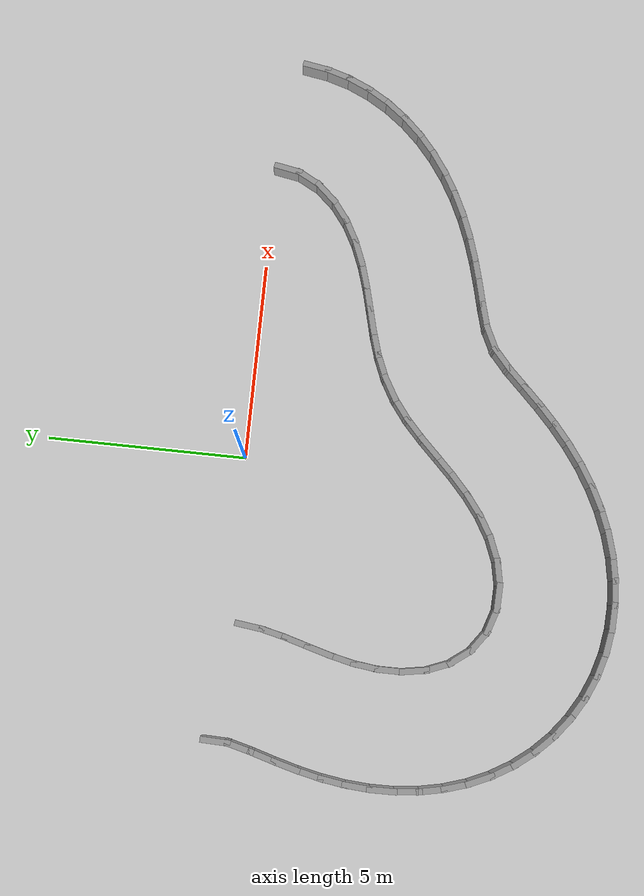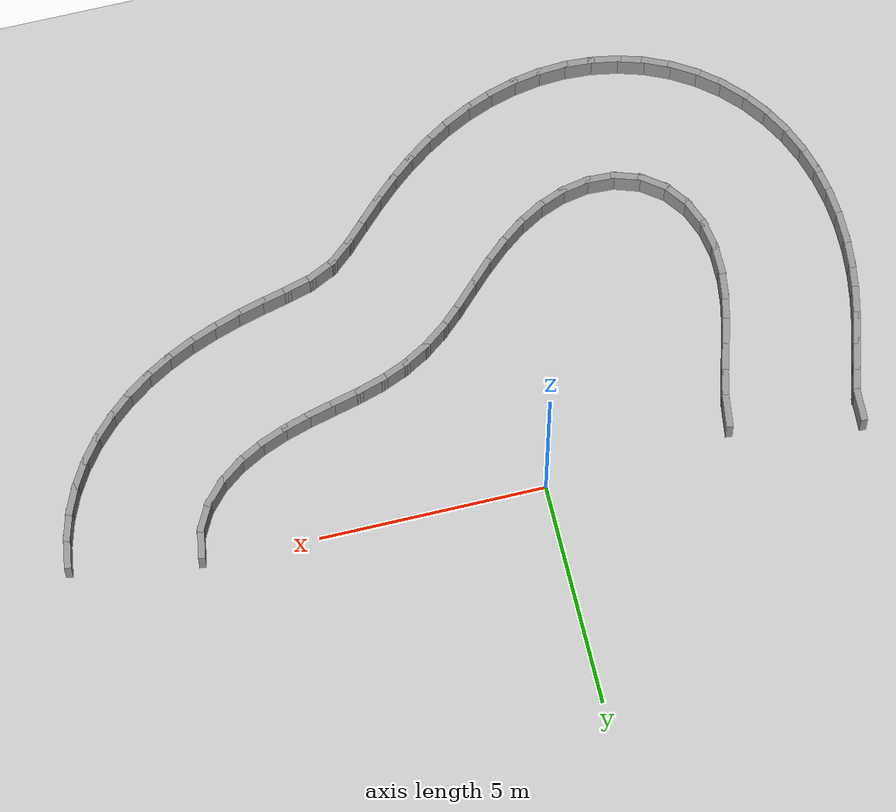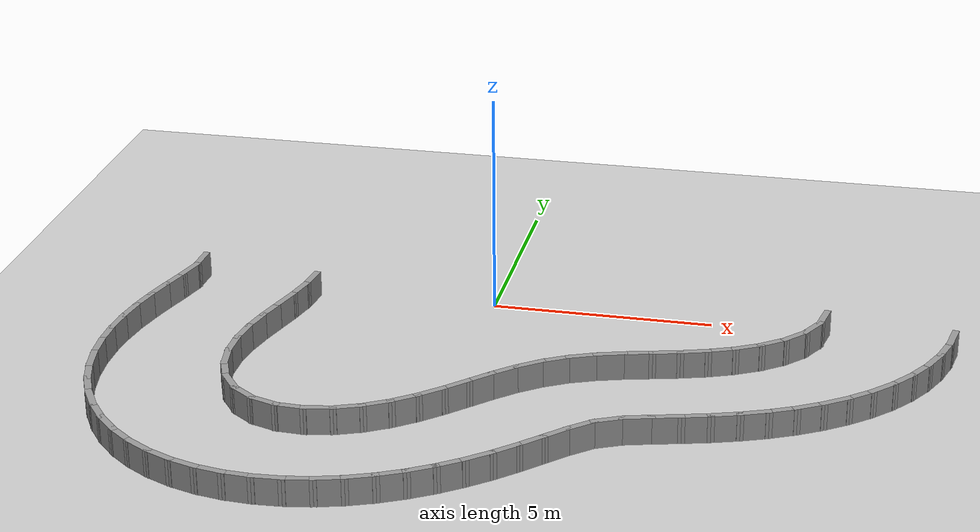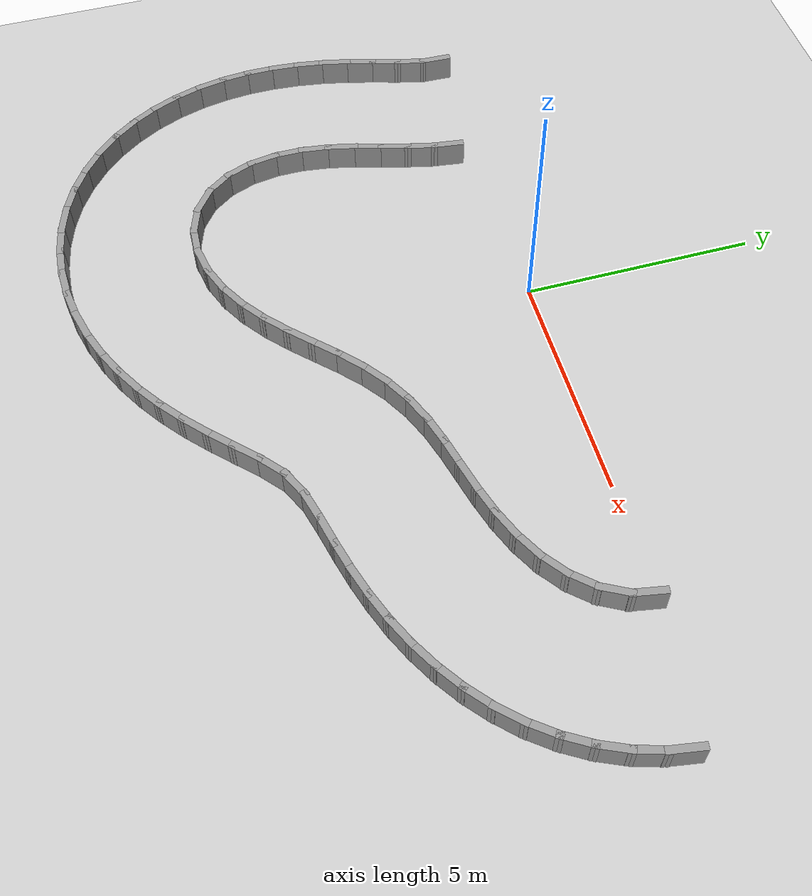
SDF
<sdf version="1.7">
 <world name="default">
  <model name="ground_plane">
   <static>1</static>
   <link name="link">
    <collision name="collision">
     <geometry><plane><normal>0 0 1</normal><size>100 100</size></plane></geometry>
     <surface><friction><ode><mu>100</mu><mu2>50</mu2></ode></friction></surface>
    </collision>
    <visual name="visual">
     <cast_shadows>0</cast_shadows>
     <geometry><plane><normal>0 0 1</normal><size>100 100</size></plane></geometry>
     <material>
      <script><uri>file://media/materials/scripts/gazebo.material</uri><name>Gazebo/Grey</name></script>
     </material>
    </visual>
   </link>
  </model>
  <model name="rand_lobed_09">
   <link name="Wall_35">
    <collision name="Wall_35_Collision">
     <geometry><box><size>0.7496 0.1500 0.6000</size></box></geometry>
     <pose>0 0 0.3000 0 -0 0</pose>
    </collision>
    <visual name="Wall_35_Visual">
     <pose>0 0 0.3000 0 -0 0</pose>
     <geometry><box><size>0.7496 0.1500 0.6000</size></box></geometry>
     <material>
      <script><uri>file://media/materials/scripts/gazebo.material</uri><name>Gazebo/Grey</name></script>
      <ambient>1 1 1 1</ambient>
     </material>
    </visual>
    <pose>-4.1681 -0.5869 0 0 -0 -1.69973</pose>
   </link>
   <link name="Wall_36">
    <collision name="Wall_36_Collision">
     <geometry><box><size>0.7498 0.1500 0.6000</size></box></geometry>
     <pose>0 0 0.3000 0 -0 0</pose>
    </collision>
    <visual name="Wall_36_Visual">
     <pose>0 0 0.3000 0 -0 0</pose>
     <geometry><box><size>0.7498 0.1500 0.6000</size></box></geometry>
     <material>
      <script><uri>file://media/materials/scripts/gazebo.material</uri><name>Gazebo/Grey</name></script>
      <ambient>1 1 1 1</ambient>
     </material>
    </visual>
    <pose>-4.2751 -1.1762 0 0 -0 -1.80134</pose>
   </link>
   <link name="Wall_37">
    <collision name="Wall_37_Collision">
     <geometry><box><size>0.7500 0.1500 0.6000</size></box></geometry>
     <pose>0 0 0.3000 0 -0 0</pose>
    </collision>
    <visual name="Wall_37_Visual">
     <pose>0 0 0.3000 0 -0 0</pose>
     <geometry><box><size>0.7500 0.1500 0.6000</size></box></geometry>
     <material>
      <script><uri>file://media/materials/scripts/gazebo.material</uri><name>Gazebo/Grey</name></script>
      <ambient>1 1 1 1</ambient>
     </material>
    </visual>
    <pose>-4.4270 -1.7564 0 0 -0 -1.85222</pose>
   </link>
   <link name="Wall_38">
    <collision name="Wall_38_Collision">
     <geometry><box><size>0.7500 0.1500 0.6000</size></box></geometry>
     <pose>0 0 0.3000 0 -0 0</pose>
    </collision>
    <visual name="Wall_38_Visual">
     <pose>0 0 0.3000 0 -0 0</pose>
     <geometry><box><size>0.7500 0.1500 0.6000</size></box></geometry>
     <material>
      <script><uri>file://media/materials/scripts/gazebo.material</uri><name>Gazebo/Grey</name></script>
      <ambient>1 1 1 1</ambient>
     </material>
    </visual>
    <pose>-4.5922 -2.3332 0 0 -0 -1.84720</pose>
   </link>
   <link name="Wall_39">
    <collision name="Wall_39_Collision">
     <geometry><box><size>0.7499 0.1500 0.6000</size></box></geometry>
     <pose>0 0 0.3000 0 -0 0</pose>
    </collision>
    <visual name="Wall_39_Visual">
     <pose>0 0 0.3000 0 -0 0</pose>
     <geometry><box><size>0.7499 0.1500 0.6000</size></box></geometry>
     <material>
      <script><uri>file://media/materials/scripts/gazebo.material</uri><name>Gazebo/Grey</name></script>
      <ambient>1 1 1 1</ambient>
     </material>
    </visual>
    <pose>-4.7403 -2.9143 0 0 -0 -1.79349</pose>
   </link>
   <link name="Wall_40">
    <collision name="Wall_40_Collision">
     <geometry><box><size>0.7497 0.1500 0.6000</size></box></geometry>
     <pose>0 0 0.3000 0 -0 0</pose>
    </collision>
    <visual name="Wall_40_Visual">
     <pose>0 0 0.3000 0 -0 0</pose>
     <geometry><box><size>0.7497 0.1500 0.6000</size></box></geometry>
     <material>
      <script><uri>file://media/materials/scripts/gazebo.material</uri><name>Gazebo/Grey</name></script>
      <ambient>1 1 1 1</ambient>
     </material>
    </visual>
    <pose>-4.8451 -3.5042 0 0 -0 -1.69987</pose>
   </link>
   <link name="Wall_41">
    <collision name="Wall_41_Collision">
     <geometry><box><size>0.7495 0.1500 0.6000</size></box></geometry>
     <pose>0 0 0.3000 0 -0 0</pose>
    </collision>
    <visual name="Wall_41_Visual">
     <pose>0 0 0.3000 0 -0 0</pose>
     <geometry><box><size>0.7495 0.1500 0.6000</size></box></geometry>
     <material>
      <script><uri>file://media/materials/scripts/gazebo.material</uri><name>Gazebo/Grey</name></script>
      <ambient>1 1 1 1</ambient>
     </material>
    </visual>
    <pose>-4.8837 -4.1013 0 0 -0 -1.57063</pose>
   </link>
   <link name="Wall_42">
    <collision name="Wall_42_Collision">
     <geometry><box><size>0.7491 0.1500 0.6000</size></box></geometry>
     <pose>0 0 0.3000 0 -0 0</pose>
    </collision>
    <visual name="Wall_42_Visual">
     <pose>0 0 0.3000 0 -0 0</pose>
     <geometry><box><size>0.7491 0.1500 0.6000</size></box></geometry>
     <material>
      <script><uri>file://media/materials/scripts/gazebo.material</uri><name>Gazebo/Grey</name></script>
      <ambient>1 1 1 1</ambient>
     </material>
    </visual>
    <pose>-4.8339 -4.6964 0 0 -0 -1.40405</pose>
   </link>
   <link name="Wall_43">
    <collision name="Wall_43_Collision">
     <geometry><box><size>0.7486 0.1500 0.6000</size></box></geometry>
     <pose>0 0 0.3000 0 -0 0</pose>
    </collision>
    <visual name="Wall_43_Visual">
     <pose>0 0 0.3000 0 -0 0</pose>
     <geometry><box><size>0.7486 0.1500 0.6000</size></box></geometry>
     <material>
      <script><uri>file://media/materials/scripts/gazebo.material</uri><name>Gazebo/Grey</name></script>
      <ambient>1 1 1 1</ambient>
     </material>
    </visual>
    <pose>-4.6740 -5.2701 0 0 -0 -1.19387</pose>
   </link>
   <link name="Wall_44">
    <collision name="Wall_44_Collision">
     <geometry><box><size>0.7480 0.1500 0.6000</size></box></geometry>
     <pose>0 0 0.3000 0 -0 0</pose>
    </collision>
    <visual name="Wall_44_Visual">
     <pose>0 0 0.3000 0 -0 0</pose>
     <geometry><box><size>0.7480 0.1500 0.6000</size></box></geometry>
     <material>
      <script><uri>file://media/materials/scripts/gazebo.material</uri><name>Gazebo/Grey</name></script>
      <ambient>1 1 1 1</ambient>
     </material>
    </visual>
    <pose>-4.3859 -5.7887 0 0 -0 -0.93351</pose>
   </link>
   <link name="Wall_45">
    <collision name="Wall_45_Collision">
     <geometry><box><size>0.7475 0.1500 0.6000</size></box></geometry>
     <pose>0 0 0.3000 0 -0 0</pose>
    </collision>
    <visual name="Wall_45_Visual">
     <pose>0 0 0.3000 0 -0 0</pose>
     <geometry><box><size>0.7475 0.1500 0.6000</size></box></geometry>
     <material>
      <script><uri>file://media/materials/scripts/gazebo.material</uri><name>Gazebo/Grey</name></script>
      <ambient>1 1 1 1</ambient>
     </material>
    </visual>
    <pose>-3.9667 -6.2051 0 0 -0 -0.63054</pose>
   </link>
   <link name="Wall_46">
    <collision name="Wall_46_Collision">
     <geometry><box><size>0.7478 0.1500 0.6000</size></box></geometry>
     <pose>0 0 0.3000 0 -0 0</pose>
    </collision>
    <visual name="Wall_46_Visual">
     <pose>0 0 0.3000 0 -0 0</pose>
     <geometry><box><size>0.7478 0.1500 0.6000</size></box></geometry>
     <material>
      <script><uri>file://media/materials/scripts/gazebo.material</uri><name>Gazebo/Grey</name></script>
      <ambient>1 1 1 1</ambient>
     </material>
    </visual>
    <pose>-3.4417 -6.4754 0 0 -0 -0.32027</pose>
   </link>
   <link name="Wall_47">
    <collision name="Wall_47_Collision">
     <geometry><box><size>0.7484 0.1500 0.6000</size></box></geometry>
     <pose>0 0 0.3000 0 -0 0</pose>
    </collision>
    <visual name="Wall_47_Visual">
     <pose>0 0 0.3000 0 -0 0</pose>
     <geometry><box><size>0.7484 0.1500 0.6000</size></box></geometry>
     <material>
      <script><uri>file://media/materials/scripts/gazebo.material</uri><name>Gazebo/Grey</name></script>
      <ambient>1 1 1 1</ambient>
     </material>
    </visual>
    <pose>-2.8591 -6.5824 0 0 -0 -0.04329</pose>
   </link>
   <link name="Wall_48">
    <collision name="Wall_48_Collision">
     <geometry><box><size>0.7489 0.1500 0.6000</size></box></geometry>
     <pose>0 0 0.3000 0 -0 0</pose>
    </collision>
    <visual name="Wall_48_Visual">
     <pose>0 0 0.3000 0 -0 0</pose>
     <geometry><box><size>0.7489 0.1500 0.6000</size></box></geometry>
     <material>
      <script><uri>file://media/materials/scripts/gazebo.material</uri><name>Gazebo/Grey</name></script>
      <ambient>1 1 1 1</ambient>
     </material>
    </visual>
    <pose>-2.2659 -6.5401 0 0 -0 0.18554</pose>
   </link>
   <link name="Wall_49">
    <collision name="Wall_49_Collision">
     <geometry><box><size>0.7493 0.1500 0.6000</size></box></geometry>
     <pose>0 0 0.3000 0 -0 0</pose>
    </collision>
    <visual name="Wall_49_Visual">
     <pose>0 0 0.3000 0 -0 0</pose>
     <geometry><box><size>0.7493 0.1500 0.6000</size></box></geometry>
     <material>
      <script><uri>file://media/materials/scripts/gazebo.material</uri><name>Gazebo/Grey</name></script>
      <ambient>1 1 1 1</ambient>
     </material>
    </visual>
    <pose>-1.6923 -6.3761 0 0 -0 0.37130</pose>
   </link>
   <link name="Wall_50">
    <collision name="Wall_50_Collision">
     <geometry><box><size>0.7495 0.1500 0.6000</size></box></geometry>
     <pose>0 0 0.3000 0 -0 0</pose>
    </collision>
    <visual name="Wall_50_Visual">
     <pose>0 0 0.3000 0 -0 0</pose>
     <geometry><box><size>0.7495 0.1500 0.6000</size></box></geometry>
     <material>
      <script><uri>file://media/materials/scripts/gazebo.material</uri><name>Gazebo/Grey</name></script>
      <ambient>1 1 1 1</ambient>
     </material>
    </visual>
    <pose>-1.1532 -6.1181 0 0 -0 0.52147</pose>
   </link>
   <link name="Wall_51">
    <collision name="Wall_51_Collision">
     <geometry><box><size>0.7497 0.1500 0.6000</size></box></geometry>
     <pose>0 0 0.3000 0 -0 0</pose>
    </collision>
    <visual name="Wall_51_Visual">
     <pose>0 0 0.3000 0 -0 0</pose>
     <geometry><box><size>0.7497 0.1500 0.6000</size></box></geometry>
     <material>
      <script><uri>file://media/materials/scripts/gazebo.material</uri><name>Gazebo/Grey</name></script>
      <ambient>1 1 1 1</ambient>
     </material>
    </visual>
    <pose>-0.6529 -5.7895 0 0 -0 0.64077</pose>
   </link>
   <link name="Wall_52">
    <collision name="Wall_52_Collision">
     <geometry><box><size>0.7499 0.1500 0.6000</size></box></geometry>
     <pose>0 0 0.3000 0 -0 0</pose>
    </collision>
    <visual name="Wall_52_Visual">
     <pose>0 0 0.3000 0 -0 0</pose>
     <geometry><box><size>0.7499 0.1500 0.6000</size></box></geometry>
     <material>
      <script><uri>file://media/materials/scripts/gazebo.material</uri><name>Gazebo/Grey</name></script>
      <ambient>1 1 1 1</ambient>
     </material>
    </visual>
    <pose>-0.1888 -5.4104 0 0 -0 0.72901</pose>
   </link>
   <link name="Wall_53">
    <collision name="Wall_53_Collision">
     <geometry><box><size>0.7500 0.1500 0.6000</size></box></geometry>
     <pose>0 0 0.3000 0 -0 0</pose>
    </collision>
    <visual name="Wall_53_Visual">
     <pose>0 0 0.3000 0 -0 0</pose>
     <geometry><box><size>0.7500 0.1500 0.6000</size></box></geometry>
     <material>
      <script><uri>file://media/materials/scripts/gazebo.material</uri><name>Gazebo/Grey</name></script>
      <ambient>1 1 1 1</ambient>
     </material>
    </visual>
    <pose>0.2481 -4.9995 0 0 -0 0.78068</pose>
   </link>
   <link name="Wall_54">
    <collision name="Wall_54_Collision">
     <geometry><box><size>0.7500 0.1500 0.6000</size></box></geometry>
     <pose>0 0 0.3000 0 -0 0</pose>
    </collision>
    <visual name="Wall_54_Visual">
     <pose>0 0 0.3000 0 -0 0</pose>
     <geometry><box><size>0.7500 0.1500 0.6000</size></box></geometry>
     <material>
      <script><uri>file://media/materials/scripts/gazebo.material</uri><name>Gazebo/Grey</name></script>
      <ambient>1 1 1 1</ambient>
     </material>
    </visual>
    <pose>0.6731 -4.5761 0 0 -0 0.78625</pose>
   </link>
   <link name="Wall_55">
    <collision name="Wall_55_Collision">
     <geometry><box><size>0.7499 0.1500 0.6000</size></box></geometry>
     <pose>0 0 0.3000 0 -0 0</pose>
    </collision>
    <visual name="Wall_55_Visual">
     <pose>0 0 0.3000 0 -0 0</pose>
     <geometry><box><size>0.7499 0.1500 0.6000</size></box></geometry>
     <material>
      <script><uri>file://media/materials/scripts/gazebo.material</uri><name>Gazebo/Grey</name></script>
      <ambient>1 1 1 1</ambient>
     </material>
    </visual>
    <pose>1.1069 -4.1620 0 0 -0 0.73813</pose>
   </link>
   <link name="Wall_56">
    <collision name="Wall_56_Collision">
     <geometry><box><size>0.7497 0.1500 0.6000</size></box></geometry>
     <pose>0 0 0.3000 0 -0 0</pose>
    </collision>
    <visual name="Wall_56_Visual">
     <pose>0 0 0.3000 0 -0 0</pose>
     <geometry><box><size>0.7497 0.1500 0.6000</size></box></geometry>
     <material>
      <script><uri>file://media/materials/scripts/gazebo.material</uri><name>Gazebo/Grey</name></script>
      <ambient>1 1 1 1</ambient>
     </material>
    </visual>
    <pose>1.5691 -3.7809 0 0 -0 0.64086</pose>
   </link>
   <link name="Wall_57">
    <collision name="Wall_57_Collision">
     <geometry><box><size>0.7496 0.1500 0.6000</size></box></geometry>
     <pose>0 0 0.3000 0 -0 0</pose>
    </collision>
    <visual name="Wall_57_Visual">
     <pose>0 0 0.3000 0 -0 0</pose>
     <geometry><box><size>0.7496 0.1500 0.6000</size></box></geometry>
     <material>
      <script><uri>file://media/materials/scripts/gazebo.material</uri><name>Gazebo/Grey</name></script>
      <ambient>1 1 1 1</ambient>
     </material>
    </visual>
    <pose>2.0704 -3.4540 0 0 -0 0.51472</pose>
   </link>
   <link name="Wall_58">
    <collision name="Wall_58_Collision">
     <geometry><box><size>0.7497 0.1500 0.6000</size></box></geometry>
     <pose>0 0 0.3000 0 -0 0</pose>
    </collision>
    <visual name="Wall_58_Visual">
     <pose>0 0 0.3000 0 -0 0</pose>
     <geometry><box><size>0.7497 0.1500 0.6000</size></box></geometry>
     <material>
      <script><uri>file://media/materials/scripts/gazebo.material</uri><name>Gazebo/Grey</name></script>
      <ambient>1 1 1 1</ambient>
     </material>
    </visual>
    <pose>2.6088 -3.1927 0 0 -0 0.38891</pose>
   </link>
   <link name="Wall_59">
    <collision name="Wall_59_Collision">
     <geometry><box><size>0.7499 0.1500 0.6000</size></box></geometry>
     <pose>0 0 0.3000 0 -0 0</pose>
    </collision>
    <visual name="Wall_59_Visual">
     <pose>0 0 0.3000 0 -0 0</pose>
     <geometry><box><size>0.7499 0.1500 0.6000</size></box></geometry>
     <material>
      <script><uri>file://media/materials/scripts/gazebo.material</uri><name>Gazebo/Grey</name></script>
      <ambient>1 1 1 1</ambient>
     </material>
    </visual>
    <pose>3.1735 -2.9927 0 0 -0 0.29199</pose>
   </link>
   <link name="Wall_60">
    <collision name="Wall_60_Collision">
     <geometry><box><size>0.7500 0.1500 0.6000</size></box></geometry>
     <pose>0 0 0.3000 0 -0 0</pose>
    </collision>
    <visual name="Wall_60_Visual">
     <pose>0 0 0.3000 0 -0 0</pose>
     <geometry><box><size>0.7500 0.1500 0.6000</size></box></geometry>
     <material>
      <script><uri>file://media/materials/scripts/gazebo.material</uri><name>Gazebo/Grey</name></script>
      <ambient>1 1 1 1</ambient>
     </material>
    </visual>
    <pose>3.7519 -2.8341 0 0 -0 0.24324</pose>
   </link>
   <link name="Wall_61">
    <collision name="Wall_61_Collision">
     <geometry><box><size>0.7500 0.1500 0.6000</size></box></geometry>
     <pose>0 0 0.3000 0 -0 0</pose>
    </collision>
    <visual name="Wall_61_Visual">
     <pose>0 0 0.3000 0 -0 0</pose>
     <geometry><box><size>0.7500 0.1500 0.6000</size></box></geometry>
     <material>
      <script><uri>file://media/materials/scripts/gazebo.material</uri><name>Gazebo/Grey</name></script>
      <ambient>1 1 1 1</ambient>
     </material>
    </visual>
    <pose>4.3340 -2.6887 0 0 -0 0.24637</pose>
   </link>
   <link name="Wall_62">
    <collision name="Wall_62_Collision">
     <geometry><box><size>0.7499 0.1500 0.6000</size></box></geometry>
     <pose>0 0 0.3000 0 -0 0</pose>
    </collision>
    <visual name="Wall_62_Visual">
     <pose>0 0 0.3000 0 -0 0</pose>
     <geometry><box><size>0.7499 0.1500 0.6000</size></box></geometry>
     <material>
      <script><uri>file://media/materials/scripts/gazebo.material</uri><name>Gazebo/Grey</name></script>
      <ambient>1 1 1 1</ambient>
     </material>
    </visual>
    <pose>4.9120 -2.5286 0 0 -0 0.29402</pose>
   </link>
   <link name="Wall_63">
    <collision name="Wall_63_Collision">
     <geometry><box><size>0.7498 0.1500 0.6000</size></box></geometry>
     <pose>0 0 0.3000 0 -0 0</pose>
    </collision>
    <visual name="Wall_63_Visual">
     <pose>0 0 0.3000 0 -0 0</pose>
     <geometry><box><size>0.7498 0.1500 0.6000</size></box></geometry>
     <material>
      <script><uri>file://media/materials/scripts/gazebo.material</uri><name>Gazebo/Grey</name></script>
      <ambient>1 1 1 1</ambient>
     </material>
    </visual>
    <pose>5.4778 -2.3311 0 0 -0 0.37762</pose>
   </link>
   <link name="Wall_64">
    <collision name="Wall_64_Collision">
     <geometry><box><size>0.7496 0.1500 0.6000</size></box></geometry>
     <pose>0 0 0.3000 0 -0 0</pose>
    </collision>
    <visual name="Wall_64_Visual">
     <pose>0 0 0.3000 0 -0 0</pose>
     <geometry><box><size>0.7496 0.1500 0.6000</size></box></geometry>
     <material>
      <script><uri>file://media/materials/scripts/gazebo.material</uri><name>Gazebo/Grey</name></script>
      <ambient>1 1 1 1</ambient>
     </material>
    </visual>
    <pose>6.0206 -2.0787 0 0 -0 0.49312</pose>
   </link>
   <link name="Wall_65">
    <collision name="Wall_65_Collision">
     <geometry><box><size>0.7493 0.1500 0.6000</size></box></geometry>
     <pose>0 0 0.3000 0 -0 0</pose>
    </collision>
    <visual name="Wall_65_Visual">
     <pose>0 0 0.3000 0 -0 0</pose>
     <geometry><box><size>0.7493 0.1500 0.6000</size></box></geometry>
     <material>
      <script><uri>file://media/materials/scripts/gazebo.material</uri><name>Gazebo/Grey</name></script>
      <ambient>1 1 1 1</ambient>
     </material>
    </visual>
    <pose>6.5246 -1.7573 0 0 -0 0.64217</pose>
   </link>
   <link name="Wall_66">
    <collision name="Wall_66_Collision">
     <geometry><box><size>0.7488 0.1500 0.6000</size></box></geometry>
     <pose>0 0 0.3000 0 -0 0</pose>
    </collision>
    <visual name="Wall_66_Visual">
     <pose>0 0 0.3000 0 -0 0</pose>
     <geometry><box><size>0.7488 0.1500 0.6000</size></box></geometry>
     <material>
      <script><uri>file://media/materials/scripts/gazebo.material</uri><name>Gazebo/Grey</name></script>
      <ambient>1 1 1 1</ambient>
     </material>
    </visual>
    <pose>6.9660 -1.3563 0 0 -0 0.83293</pose>
   </link>
   <link name="Wall_67">
    <collision name="Wall_67_Collision">
     <geometry><box><size>0.7481 0.1500 0.6000</size></box></geometry>
     <pose>0 0 0.3000 0 -0 0</pose>
    </collision>
    <visual name="Wall_67_Visual">
     <pose>0 0 0.3000 0 -0 0</pose>
     <geometry><box><size>0.7481 0.1500 0.6000</size></box></geometry>
     <material>
      <script><uri>file://media/materials/scripts/gazebo.material</uri><name>Gazebo/Grey</name></script>
      <ambient>1 1 1 1</ambient>
     </material>
    </visual>
    <pose>7.3087 -0.8712 0 0 -0 1.07878</pose>
   </link>
   <link name="Wall_68">
    <collision name="Wall_68_Collision">
     <geometry><box><size>0.7472 0.1500 0.6000</size></box></geometry>
     <pose>0 0 0.3000 0 -0 0</pose>
    </collision>
    <visual name="Wall_68_Visual">
     <pose>0 0 0.3000 0 -0 0</pose>
     <geometry><box><size>0.7472 0.1500 0.6000</size></box></geometry>
     <material>
      <script><uri>file://media/materials/scripts/gazebo.material</uri><name>Gazebo/Grey</name></script>
      <ambient>1 1 1 1</ambient>
     </material>
    </visual>
    <pose>7.5043 -0.3140 0 0 -0 1.38770</pose>
   </link>
   <link name="Wall_118">
    <collision name="Wall_118_Collision">
     <geometry><box><size>0.7470 0.1500 0.6000</size></box></geometry>
     <pose>0 0 0.3000 0 -0 0</pose>
    </collision>
    <visual name="Wall_118_Visual">
     <pose>0 0 0.3000 0 -0 0</pose>
     <geometry><box><size>0.7470 0.1500 0.6000</size></box></geometry>
     <material>
      <script><uri>file://media/materials/scripts/gazebo.material</uri><name>Gazebo/Grey</name></script>
      <ambient>1 1 1 1</ambient>
     </material>
    </visual>
    <pose>-6.9895 -0.0608 0 0 -0 -1.60467</pose>
   </link>
   <link name="Wall_119">
    <collision name="Wall_119_Collision">
     <geometry><box><size>0.7498 0.1500 0.6000</size></box></geometry>
     <pose>0 0 0.3000 0 -0 0</pose>
    </collision>
    <visual name="Wall_119_Visual">
     <pose>0 0 0.3000 0 -0 0</pose>
     <geometry><box><size>0.7498 0.1500 0.6000</size></box></geometry>
     <material>
      <script><uri>file://media/materials/scripts/gazebo.material</uri><name>Gazebo/Grey</name></script>
      <ambient>1 1 1 1</ambient>
     </material>
    </visual>
    <pose>-7.0736 -0.6497 0 0 -0 -1.82010</pose>
   </link>
   <link name="Wall_120">
    <collision name="Wall_120_Collision">
     <geometry><box><size>0.7500 0.1500 0.6000</size></box></geometry>
     <pose>0 0 0.3000 0 -0 0</pose>
    </collision>
    <visual name="Wall_120_Visual">
     <pose>0 0 0.3000 0 -0 0</pose>
     <geometry><box><size>0.7500 0.1500 0.6000</size></box></geometry>
     <material>
      <script><uri>file://media/materials/scripts/gazebo.material</uri><name>Gazebo/Grey</name></script>
      <ambient>1 1 1 1</ambient>
     </material>
    </visual>
    <pose>-7.2322 -1.2282 0 0 -0 -1.85661</pose>
   </link>
   <link name="Wall_121">
    <collision name="Wall_121_Collision">
     <geometry><box><size>0.7500 0.1500 0.6000</size></box></geometry>
     <pose>0 0 0.3000 0 -0 0</pose>
    </collision>
    <visual name="Wall_121_Visual">
     <pose>0 0 0.3000 0 -0 0</pose>
     <geometry><box><size>0.7500 0.1500 0.6000</size></box></geometry>
     <material>
      <script><uri>file://media/materials/scripts/gazebo.material</uri><name>Gazebo/Grey</name></script>
      <ambient>1 1 1 1</ambient>
     </material>
    </visual>
    <pose>-7.3946 -1.8057 0 0 -0 -1.83340</pose>
   </link>
   <link name="Wall_122">
    <collision name="Wall_122_Collision">
     <geometry><box><size>0.7499 0.1500 0.6000</size></box></geometry>
     <pose>0 0 0.3000 0 -0 0</pose>
    </collision>
    <visual name="Wall_122_Visual">
     <pose>0 0 0.3000 0 -0 0</pose>
     <geometry><box><size>0.7499 0.1500 0.6000</size></box></geometry>
     <material>
      <script><uri>file://media/materials/scripts/gazebo.material</uri><name>Gazebo/Grey</name></script>
      <ambient>1 1 1 1</ambient>
     </material>
    </visual>
    <pose>-7.5360 -2.3885 0 0 -0 -1.78415</pose>
   </link>
   <link name="Wall_123">
    <collision name="Wall_123_Collision">
     <geometry><box><size>0.7499 0.1500 0.6000</size></box></geometry>
     <pose>0 0 0.3000 0 -0 0</pose>
    </collision>
    <visual name="Wall_123_Visual">
     <pose>0 0 0.3000 0 -0 0</pose>
     <geometry><box><size>0.7499 0.1500 0.6000</size></box></geometry>
     <material>
      <script><uri>file://media/materials/scripts/gazebo.material</uri><name>Gazebo/Grey</name></script>
      <ambient>1 1 1 1</ambient>
     </material>
    </visual>
    <pose>-7.6440 -2.9783 0 0 -0 -1.71971</pose>
   </link>
   <link name="Wall_124">
    <collision name="Wall_124_Collision">
     <geometry><box><size>0.7498 0.1500 0.6000</size></box></geometry>
     <pose>0 0 0.3000 0 -0 0</pose>
    </collision>
    <visual name="Wall_124_Visual">
     <pose>0 0 0.3000 0 -0 0</pose>
     <geometry><box><size>0.7498 0.1500 0.6000</size></box></geometry>
     <material>
      <script><uri>file://media/materials/scripts/gazebo.material</uri><name>Gazebo/Grey</name></script>
      <ambient>1 1 1 1</ambient>
     </material>
    </visual>
    <pose>-7.7106 -3.5740 0 0 -0 -1.64450</pose>
   </link>
   <link name="Wall_125">
    <collision name="Wall_125_Collision">
     <geometry><box><size>0.7498 0.1500 0.6000</size></box></geometry>
     <pose>0 0 0.3000 0 -0 0</pose>
    </collision>
    <visual name="Wall_125_Visual">
     <pose>0 0 0.3000 0 -0 0</pose>
     <geometry><box><size>0.7498 0.1500 0.6000</size></box></geometry>
     <material>
      <script><uri>file://media/materials/scripts/gazebo.material</uri><name>Gazebo/Grey</name></script>
      <ambient>1 1 1 1</ambient>
     </material>
    </visual>
    <pose>-7.7297 -4.1730 0 0 -0 -1.56086</pose>
   </link>
   <link name="Wall_126">
    <collision name="Wall_126_Collision">
     <geometry><box><size>0.7498 0.1500 0.6000</size></box></geometry>
     <pose>0 0 0.3000 0 -0 0</pose>
    </collision>
    <visual name="Wall_126_Visual">
     <pose>0 0 0.3000 0 -0 0</pose>
     <geometry><box><size>0.7498 0.1500 0.6000</size></box></geometry>
     <material>
      <script><uri>file://media/materials/scripts/gazebo.material</uri><name>Gazebo/Grey</name></script>
      <ambient>1 1 1 1</ambient>
     </material>
    </visual>
    <pose>-7.6965 -4.7713 0 0 -0 -1.46969</pose>
   </link>
   <link name="Wall_127">
    <collision name="Wall_127_Collision">
     <geometry><box><size>0.7497 0.1500 0.6000</size></box></geometry>
     <pose>0 0 0.3000 0 -0 0</pose>
    </collision>
    <visual name="Wall_127_Visual">
     <pose>0 0 0.3000 0 -0 0</pose>
     <geometry><box><size>0.7497 0.1500 0.6000</size></box></geometry>
     <material>
      <script><uri>file://media/materials/scripts/gazebo.material</uri><name>Gazebo/Grey</name></script>
      <ambient>1 1 1 1</ambient>
     </material>
    </visual>
    <pose>-7.6069 -5.3636 0 0 -0 -1.37177</pose>
   </link>
   <link name="Wall_128">
    <collision name="Wall_128_Collision">
     <geometry><box><size>0.7497 0.1500 0.6000</size></box></geometry>
     <pose>0 0 0.3000 0 -0 0</pose>
    </collision>
    <visual name="Wall_128_Visual">
     <pose>0 0 0.3000 0 -0 0</pose>
     <geometry><box><size>0.7497 0.1500 0.6000</size></box></geometry>
     <material>
      <script><uri>file://media/materials/scripts/gazebo.material</uri><name>Gazebo/Grey</name></script>
      <ambient>1 1 1 1</ambient>
     </material>
    </visual>
    <pose>-7.4580 -5.9437 0 0 -0 -1.26737</pose>
   </link>
   <link name="Wall_129">
    <collision name="Wall_129_Collision">
     <geometry><box><size>0.7497 0.1500 0.6000</size></box></geometry>
     <pose>0 0 0.3000 0 -0 0</pose>
    </collision>
    <visual name="Wall_129_Visual">
     <pose>0 0 0.3000 0 -0 0</pose>
     <geometry><box><size>0.7497 0.1500 0.6000</size></box></geometry>
     <material>
      <script><uri>file://media/materials/scripts/gazebo.material</uri><name>Gazebo/Grey</name></script>
      <ambient>1 1 1 1</ambient>
     </material>
    </visual>
    <pose>-7.2479 -6.5044 0 0 -0 -1.15716</pose>
   </link>
   <link name="Wall_130">
    <collision name="Wall_130_Collision">
     <geometry><box><size>0.7496 0.1500 0.6000</size></box></geometry>
     <pose>0 0 0.3000 0 -0 0</pose>
    </collision>
    <visual name="Wall_130_Visual">
     <pose>0 0 0.3000 0 -0 0</pose>
     <geometry><box><size>0.7496 0.1500 0.6000</size></box></geometry>
     <material>
      <script><uri>file://media/materials/scripts/gazebo.material</uri><name>Gazebo/Grey</name></script>
      <ambient>1 1 1 1</ambient>
     </material>
    </visual>
    <pose>-6.9760 -7.0378 0 0 -0 -1.04169</pose>
   </link>
   <link name="Wall_131">
    <collision name="Wall_131_Collision">
     <geometry><box><size>0.7496 0.1500 0.6000</size></box></geometry>
     <pose>0 0 0.3000 0 -0 0</pose>
    </collision>
    <visual name="Wall_131_Visual">
     <pose>0 0 0.3000 0 -0 0</pose>
     <geometry><box><size>0.7496 0.1500 0.6000</size></box></geometry>
     <material>
      <script><uri>file://media/materials/scripts/gazebo.material</uri><name>Gazebo/Grey</name></script>
      <ambient>1 1 1 1</ambient>
     </material>
    </visual>
    <pose>-6.6435 -7.5355 0 0 -0 -0.92190</pose>
   </link>
   <link name="Wall_132">
    <collision name="Wall_132_Collision">
     <geometry><box><size>0.7496 0.1500 0.6000</size></box></geometry>
     <pose>0 0 0.3000 0 -0 0</pose>
    </collision>
    <visual name="Wall_132_Visual">
     <pose>0 0 0.3000 0 -0 0</pose>
     <geometry><box><size>0.7496 0.1500 0.6000</size></box></geometry>
     <material>
      <script><uri>file://media/materials/scripts/gazebo.material</uri><name>Gazebo/Grey</name></script>
      <ambient>1 1 1 1</ambient>
     </material>
    </visual>
    <pose>-6.2532 -7.9891 0 0 -0 -0.79853</pose>
   </link>
   <link name="Wall_133">
    <collision name="Wall_133_Collision">
     <geometry><box><size>0.7496 0.1500 0.6000</size></box></geometry>
     <pose>0 0 0.3000 0 -0 0</pose>
    </collision>
    <visual name="Wall_133_Visual">
     <pose>0 0 0.3000 0 -0 0</pose>
     <geometry><box><size>0.7496 0.1500 0.6000</size></box></geometry>
     <material>
      <script><uri>file://media/materials/scripts/gazebo.material</uri><name>Gazebo/Grey</name></script>
      <ambient>1 1 1 1</ambient>
     </material>
    </visual>
    <pose>-5.8095 -8.3907 0 0 -0 -0.67285</pose>
   </link>
   <link name="Wall_134">
    <collision name="Wall_134_Collision">
     <geometry><box><size>0.7496 0.1500 0.6000</size></box></geometry>
     <pose>0 0 0.3000 0 -0 0</pose>
    </collision>
    <visual name="Wall_134_Visual">
     <pose>0 0 0.3000 0 -0 0</pose>
     <geometry><box><size>0.7496 0.1500 0.6000</size></box></geometry>
     <material>
      <script><uri>file://media/materials/scripts/gazebo.material</uri><name>Gazebo/Grey</name></script>
      <ambient>1 1 1 1</ambient>
     </material>
    </visual>
    <pose>-5.3189 -8.7333 0 0 -0 -0.54629</pose>
   </link>
   <link name="Wall_135">
    <collision name="Wall_135_Collision">
     <geometry><box><size>0.7496 0.1500 0.6000</size></box></geometry>
     <pose>0 0 0.3000 0 -0 0</pose>
    </collision>
    <visual name="Wall_135_Visual">
     <pose>0 0 0.3000 0 -0 0</pose>
     <geometry><box><size>0.7496 0.1500 0.6000</size></box></geometry>
     <material>
      <script><uri>file://media/materials/scripts/gazebo.material</uri><name>Gazebo/Grey</name></script>
      <ambient>1 1 1 1</ambient>
     </material>
    </visual>
    <pose>-4.7890 -9.0113 0 0 -0 -0.41997</pose>
   </link>
   <link name="Wall_136">
    <collision name="Wall_136_Collision">
     <geometry><box><size>0.7496 0.1500 0.6000</size></box></geometry>
     <pose>0 0 0.3000 0 -0 0</pose>
    </collision>
    <visual name="Wall_136_Visual">
     <pose>0 0 0.3000 0 -0 0</pose>
     <geometry><box><size>0.7496 0.1500 0.6000</size></box></geometry>
     <material>
      <script><uri>file://media/materials/scripts/gazebo.material</uri><name>Gazebo/Grey</name></script>
      <ambient>1 1 1 1</ambient>
     </material>
    </visual>
    <pose>-4.2284 -9.2209 0 0 -0 -0.29547</pose>
   </link>
   <link name="Wall_137">
    <collision name="Wall_137_Collision">
     <geometry><box><size>0.7496 0.1500 0.6000</size></box></geometry>
     <pose>0 0 0.3000 0 -0 0</pose>
    </collision>
    <visual name="Wall_137_Visual">
     <pose>0 0 0.3000 0 -0 0</pose>
     <geometry><box><size>0.7496 0.1500 0.6000</size></box></geometry>
     <material>
      <script><uri>file://media/materials/scripts/gazebo.material</uri><name>Gazebo/Grey</name></script>
      <ambient>1 1 1 1</ambient>
     </material>
    </visual>
    <pose>-3.6463 -9.3600 0 0 -0 -0.17368</pose>
   </link>
   <link name="Wall_138">
    <collision name="Wall_138_Collision">
     <geometry><box><size>0.7497 0.1500 0.6000</size></box></geometry>
     <pose>0 0 0.3000 0 -0 0</pose>
    </collision>
    <visual name="Wall_138_Visual">
     <pose>0 0 0.3000 0 -0 0</pose>
     <geometry><box><size>0.7497 0.1500 0.6000</size></box></geometry>
     <material>
      <script><uri>file://media/materials/scripts/gazebo.material</uri><name>Gazebo/Grey</name></script>
      <ambient>1 1 1 1</ambient>
     </material>
    </visual>
    <pose>-3.0516 -9.4286 0 0 -0 -0.05598</pose>
   </link>
   <link name="Wall_139">
    <collision name="Wall_139_Collision">
     <geometry><box><size>0.7497 0.1500 0.6000</size></box></geometry>
     <pose>0 0 0.3000 0 -0 0</pose>
    </collision>
    <visual name="Wall_139_Visual">
     <pose>0 0 0.3000 0 -0 0</pose>
     <geometry><box><size>0.7497 0.1500 0.6000</size></box></geometry>
     <material>
      <script><uri>file://media/materials/scripts/gazebo.material</uri><name>Gazebo/Grey</name></script>
      <ambient>1 1 1 1</ambient>
     </material>
    </visual>
    <pose>-2.4529 -9.4281 0 0 -0 0.05742</pose>
   </link>
   <link name="Wall_140">
    <collision name="Wall_140_Collision">
     <geometry><box><size>0.7497 0.1500 0.6000</size></box></geometry>
     <pose>0 0 0.3000 0 -0 0</pose>
    </collision>
    <visual name="Wall_140_Visual">
     <pose>0 0 0.3000 0 -0 0</pose>
     <geometry><box><size>0.7497 0.1500 0.6000</size></box></geometry>
     <material>
      <script><uri>file://media/materials/scripts/gazebo.material</uri><name>Gazebo/Grey</name></script>
      <ambient>1 1 1 1</ambient>
     </material>
    </visual>
    <pose>-1.8578 -9.3615 0 0 -0 0.16539</pose>
   </link>
   <link name="Wall_141">
    <collision name="Wall_141_Collision">
     <geometry><box><size>0.7497 0.1500 0.6000</size></box></geometry>
     <pose>0 0 0.3000 0 -0 0</pose>
    </collision>
    <visual name="Wall_141_Visual">
     <pose>0 0 0.3000 0 -0 0</pose>
     <geometry><box><size>0.7497 0.1500 0.6000</size></box></geometry>
     <material>
      <script><uri>file://media/materials/scripts/gazebo.material</uri><name>Gazebo/Grey</name></script>
      <ambient>1 1 1 1</ambient>
     </material>
    </visual>
    <pose>-1.2728 -9.2328 0 0 -0 0.26782</pose>
   </link>
   <link name="Wall_142">
    <collision name="Wall_142_Collision">
     <geometry><box><size>0.7498 0.1500 0.6000</size></box></geometry>
     <pose>0 0 0.3000 0 -0 0</pose>
    </collision>
    <visual name="Wall_142_Visual">
     <pose>0 0 0.3000 0 -0 0</pose>
     <geometry><box><size>0.7498 0.1500 0.6000</size></box></geometry>
     <material>
      <script><uri>file://media/materials/scripts/gazebo.material</uri><name>Gazebo/Grey</name></script>
      <ambient>1 1 1 1</ambient>
     </material>
    </visual>
    <pose>-0.7035 -9.0466 0 0 -0 0.36438</pose>
   </link>
   <link name="Wall_143">
    <collision name="Wall_143_Collision">
     <geometry><box><size>0.7498 0.1500 0.6000</size></box></geometry>
     <pose>0 0 0.3000 0 -0 0</pose>
    </collision>
    <visual name="Wall_143_Visual">
     <pose>0 0 0.3000 0 -0 0</pose>
     <geometry><box><size>0.7498 0.1500 0.6000</size></box></geometry>
     <material>
      <script><uri>file://media/materials/scripts/gazebo.material</uri><name>Gazebo/Grey</name></script>
      <ambient>1 1 1 1</ambient>
     </material>
    </visual>
    <pose>-0.1539 -8.8079 0 0 -0 0.45503</pose>
   </link>
   <link name="Wall_144">
    <collision name="Wall_144_Collision">
     <geometry><box><size>0.7498 0.1500 0.6000</size></box></geometry>
     <pose>0 0 0.3000 0 -0 0</pose>
    </collision>
    <visual name="Wall_144_Visual">
     <pose>0 0 0.3000 0 -0 0</pose>
     <geometry><box><size>0.7498 0.1500 0.6000</size></box></geometry>
     <material>
      <script><uri>file://media/materials/scripts/gazebo.material</uri><name>Gazebo/Grey</name></script>
      <ambient>1 1 1 1</ambient>
     </material>
    </visual>
    <pose>0.3729 -8.5222 0 0 -0 0.53900</pose>
   </link>
   <link name="Wall_145">
    <collision name="Wall_145_Collision">
     <geometry><box><size>0.7499 0.1500 0.6000</size></box></geometry>
     <pose>0 0 0.3000 0 -0 0</pose>
    </collision>
    <visual name="Wall_145_Visual">
     <pose>0 0 0.3000 0 -0 0</pose>
     <geometry><box><size>0.7499 0.1500 0.6000</size></box></geometry>
     <material>
      <script><uri>file://media/materials/scripts/gazebo.material</uri><name>Gazebo/Grey</name></script>
      <ambient>1 1 1 1</ambient>
     </material>
    </visual>
    <pose>0.8751 -8.1950 0 0 -0 0.61584</pose>
   </link>
   <link name="Wall_146">
    <collision name="Wall_146_Collision">
     <geometry><box><size>0.7499 0.1500 0.6000</size></box></geometry>
     <pose>0 0 0.3000 0 -0 0</pose>
    </collision>
    <visual name="Wall_146_Visual">
     <pose>0 0 0.3000 0 -0 0</pose>
     <geometry><box><size>0.7499 0.1500 0.6000</size></box></geometry>
     <material>
      <script><uri>file://media/materials/scripts/gazebo.material</uri><name>Gazebo/Grey</name></script>
      <ambient>1 1 1 1</ambient>
     </material>
    </visual>
    <pose>1.3524 -7.8321 0 0 -0 0.68423</pose>
   </link>
   <link name="Wall_147">
    <collision name="Wall_147_Collision">
     <geometry><box><size>0.7499 0.1500 0.6000</size></box></geometry>
     <pose>0 0 0.3000 0 -0 0</pose>
    </collision>
    <visual name="Wall_147_Visual">
     <pose>0 0 0.3000 0 -0 0</pose>
     <geometry><box><size>0.7499 0.1500 0.6000</size></box></geometry>
     <material>
      <script><uri>file://media/materials/scripts/gazebo.material</uri><name>Gazebo/Grey</name></script>
      <ambient>1 1 1 1</ambient>
     </material>
    </visual>
    <pose>1.8061 -7.4400 0 0 -0 0.74116</pose>
   </link>
   <link name="Wall_148">
    <collision name="Wall_148_Collision">
     <geometry><box><size>0.7500 0.1500 0.6000</size></box></geometry>
     <pose>0 0 0.3000 0 -0 0</pose>
    </collision>
    <visual name="Wall_148_Visual">
     <pose>0 0 0.3000 0 -0 0</pose>
     <geometry><box><size>0.7500 0.1500 0.6000</size></box></geometry>
     <material>
      <script><uri>file://media/materials/scripts/gazebo.material</uri><name>Gazebo/Grey</name></script>
      <ambient>1 1 1 1</ambient>
     </material>
    </visual>
    <pose>2.2406 -7.0264 0 0 -0 0.78059</pose>
   </link>
   <link name="Wall_149">
    <collision name="Wall_149_Collision">
     <geometry><box><size>0.7500 0.1500 0.6000</size></box></geometry>
     <pose>0 0 0.3000 0 -0 0</pose>
    </collision>
    <visual name="Wall_149_Visual">
     <pose>0 0 0.3000 0 -0 0</pose>
     <geometry><box><size>0.7500 0.1500 0.6000</size></box></geometry>
     <material>
      <script><uri>file://media/materials/scripts/gazebo.material</uri><name>Gazebo/Grey</name></script>
      <ambient>1 1 1 1</ambient>
     </material>
    </visual>
    <pose>2.6656 -6.6029 0 0 -0 0.78667</pose>
   </link>
   <link name="Wall_150">
    <collision name="Wall_150_Collision">
     <geometry><box><size>0.7493 0.1500 0.6000</size></box></geometry>
     <pose>0 0 0.3000 0 -0 0</pose>
    </collision>
    <visual name="Wall_150_Visual">
     <pose>0 0 0.3000 0 -0 0</pose>
     <geometry><box><size>0.7493 0.1500 0.6000</size></box></geometry>
     <material>
      <script><uri>file://media/materials/scripts/gazebo.material</uri><name>Gazebo/Grey</name></script>
      <ambient>1 1 1 1</ambient>
     </material>
    </visual>
    <pose>3.1053 -6.1959 0 0 -0 0.70654</pose>
   </link>
   <link name="Wall_151">
    <collision name="Wall_151_Collision">
     <geometry><box><size>0.7478 0.1500 0.6000</size></box></geometry>
     <pose>0 0 0.3000 0 -0 0</pose>
    </collision>
    <visual name="Wall_151_Visual">
     <pose>0 0 0.3000 0 -0 0</pose>
     <geometry><box><size>0.7478 0.1500 0.6000</size></box></geometry>
     <material>
      <script><uri>file://media/materials/scripts/gazebo.material</uri><name>Gazebo/Grey</name></script>
      <ambient>1 1 1 1</ambient>
     </material>
    </visual>
    <pose>3.6033 -5.8733 0 0 -0 0.44282</pose>
   </link>
   <link name="Wall_152">
    <collision name="Wall_152_Collision">
     <geometry><box><size>0.7499 0.1500 0.6000</size></box></geometry>
     <pose>0 0 0.3000 0 -0 0</pose>
    </collision>
    <visual name="Wall_152_Visual">
     <pose>0 0 0.3000 0 -0 0</pose>
     <geometry><box><size>0.7499 0.1500 0.6000</size></box></geometry>
     <material>
      <script><uri>file://media/materials/scripts/gazebo.material</uri><name>Gazebo/Grey</name></script>
      <ambient>1 1 1 1</ambient>
     </material>
    </visual>
    <pose>4.1627 -5.6661 0 0 -0 0.26720</pose>
   </link>
   <link name="Wall_153">
    <collision name="Wall_153_Collision">
     <geometry><box><size>0.7500 0.1500 0.6000</size></box></geometry>
     <pose>0 0 0.3000 0 -0 0</pose>
    </collision>
    <visual name="Wall_153_Visual">
     <pose>0 0 0.3000 0 -0 0</pose>
     <geometry><box><size>0.7500 0.1500 0.6000</size></box></geometry>
     <material>
      <script><uri>file://media/materials/scripts/gazebo.material</uri><name>Gazebo/Grey</name></script>
      <ambient>1 1 1 1</ambient>
     </material>
    </visual>
    <pose>4.7434 -5.5159 0 0 -0 0.23876</pose>
   </link>
   <link name="Wall_154">
    <collision name="Wall_154_Collision">
     <geometry><box><size>0.7500 0.1500 0.6000</size></box></geometry>
     <pose>0 0 0.3000 0 -0 0</pose>
    </collision>
    <visual name="Wall_154_Visual">
     <pose>0 0 0.3000 0 -0 0</pose>
     <geometry><box><size>0.7500 0.1500 0.6000</size></box></geometry>
     <material>
      <script><uri>file://media/materials/scripts/gazebo.material</uri><name>Gazebo/Grey</name></script>
      <ambient>1 1 1 1</ambient>
     </material>
    </visual>
    <pose>5.3247 -5.3673 0 0 -0 0.26187</pose>
   </link>
   <link name="Wall_155">
    <collision name="Wall_155_Collision">
     <geometry><box><size>0.7499 0.1500 0.6000</size></box></geometry>
     <pose>0 0 0.3000 0 -0 0</pose>
    </collision>
    <visual name="Wall_155_Visual">
     <pose>0 0 0.3000 0 -0 0</pose>
     <geometry><box><size>0.7499 0.1500 0.6000</size></box></geometry>
     <material>
      <script><uri>file://media/materials/scripts/gazebo.material</uri><name>Gazebo/Grey</name></script>
      <ambient>1 1 1 1</ambient>
     </material>
    </visual>
    <pose>5.9002 -5.1985 0 0 -0 0.30874</pose>
   </link>
   <link name="Wall_156">
    <collision name="Wall_156_Collision">
     <geometry><box><size>0.7499 0.1500 0.6000</size></box></geometry>
     <pose>0 0 0.3000 0 -0 0</pose>
    </collision>
    <visual name="Wall_156_Visual">
     <pose>0 0 0.3000 0 -0 0</pose>
     <geometry><box><size>0.7499 0.1500 0.6000</size></box></geometry>
     <material>
      <script><uri>file://media/materials/scripts/gazebo.material</uri><name>Gazebo/Grey</name></script>
      <ambient>1 1 1 1</ambient>
     </material>
    </visual>
    <pose>6.4657 -4.9990 0 0 -0 0.36983</pose>
   </link>
   <link name="Wall_157">
    <collision name="Wall_157_Collision">
     <geometry><box><size>0.7499 0.1500 0.6000</size></box></geometry>
     <pose>0 0 0.3000 0 -0 0</pose>
    </collision>
    <visual name="Wall_157_Visual">
     <pose>0 0 0.3000 0 -0 0</pose>
     <geometry><box><size>0.7499 0.1500 0.6000</size></box></geometry>
     <material>
      <script><uri>file://media/materials/scripts/gazebo.material</uri><name>Gazebo/Grey</name></script>
      <ambient>1 1 1 1</ambient>
     </material>
    </visual>
    <pose>7.0165 -4.7625 0 0 -0 0.44112</pose>
   </link>
   <link name="Wall_158">
    <collision name="Wall_158_Collision">
     <geometry><box><size>0.7498 0.1500 0.6000</size></box></geometry>
     <pose>0 0 0.3000 0 -0 0</pose>
    </collision>
    <visual name="Wall_158_Visual">
     <pose>0 0 0.3000 0 -0 0</pose>
     <geometry><box><size>0.7498 0.1500 0.6000</size></box></geometry>
     <material>
      <script><uri>file://media/materials/scripts/gazebo.material</uri><name>Gazebo/Grey</name></script>
      <ambient>1 1 1 1</ambient>
     </material>
    </visual>
    <pose>7.5479 -4.4852 0 0 -0 0.52090</pose>
   </link>
   <link name="Wall_159">
    <collision name="Wall_159_Collision">
     <geometry><box><size>0.7498 0.1500 0.6000</size></box></geometry>
     <pose>0 0 0.3000 0 -0 0</pose>
    </collision>
    <visual name="Wall_159_Visual">
     <pose>0 0 0.3000 0 -0 0</pose>
     <geometry><box><size>0.7498 0.1500 0.6000</size></box></geometry>
     <material>
      <script><uri>file://media/materials/scripts/gazebo.material</uri><name>Gazebo/Grey</name></script>
      <ambient>1 1 1 1</ambient>
     </material>
    </visual>
    <pose>8.0542 -4.1646 0 0 -0 0.60812</pose>
   </link>
   <link name="Wall_160">
    <collision name="Wall_160_Collision">
     <geometry><box><size>0.7498 0.1500 0.6000</size></box></geometry>
     <pose>0 0 0.3000 0 -0 0</pose>
    </collision>
    <visual name="Wall_160_Visual">
     <pose>0 0 0.3000 0 -0 0</pose>
     <geometry><box><size>0.7498 0.1500 0.6000</size></box></geometry>
     <material>
      <script><uri>file://media/materials/scripts/gazebo.material</uri><name>Gazebo/Grey</name></script>
      <ambient>1 1 1 1</ambient>
     </material>
    </visual>
    <pose>8.5291 -3.7994 0 0 -0 0.70264</pose>
   </link>
   <link name="Wall_161">
    <collision name="Wall_161_Collision">
     <geometry><box><size>0.7497 0.1500 0.6000</size></box></geometry>
     <pose>0 0 0.3000 0 -0 0</pose>
    </collision>
    <visual name="Wall_161_Visual">
     <pose>0 0 0.3000 0 -0 0</pose>
     <geometry><box><size>0.7497 0.1500 0.6000</size></box></geometry>
     <material>
      <script><uri>file://media/materials/scripts/gazebo.material</uri><name>Gazebo/Grey</name></script>
      <ambient>1 1 1 1</ambient>
     </material>
    </visual>
    <pose>8.9660 -3.3897 0 0 -0 0.80401</pose>
   </link>
   <link name="Wall_162">
    <collision name="Wall_162_Collision">
     <geometry><box><size>0.7497 0.1500 0.6000</size></box></geometry>
     <pose>0 0 0.3000 0 -0 0</pose>
    </collision>
    <visual name="Wall_162_Visual">
     <pose>0 0 0.3000 0 -0 0</pose>
     <geometry><box><size>0.7497 0.1500 0.6000</size></box></geometry>
     <material>
      <script><uri>file://media/materials/scripts/gazebo.material</uri><name>Gazebo/Grey</name></script>
      <ambient>1 1 1 1</ambient>
     </material>
    </visual>
    <pose>9.3576 -2.9366 0 0 -0 0.91213</pose>
   </link>
   <link name="Wall_163">
    <collision name="Wall_163_Collision">
     <geometry><box><size>0.7497 0.1500 0.6000</size></box></geometry>
     <pose>0 0 0.3000 0 -0 0</pose>
    </collision>
    <visual name="Wall_163_Visual">
     <pose>0 0 0.3000 0 -0 0</pose>
     <geometry><box><size>0.7497 0.1500 0.6000</size></box></geometry>
     <material>
      <script><uri>file://media/materials/scripts/gazebo.material</uri><name>Gazebo/Grey</name></script>
      <ambient>1 1 1 1</ambient>
     </material>
    </visual>
    <pose>9.6963 -2.4430 0 0 -0 1.02666</pose>
   </link>
   <link name="Wall_164">
    <collision name="Wall_164_Collision">
     <geometry><box><size>0.7496 0.1500 0.6000</size></box></geometry>
     <pose>0 0 0.3000 0 -0 0</pose>
    </collision>
    <visual name="Wall_164_Visual">
     <pose>0 0 0.3000 0 -0 0</pose>
     <geometry><box><size>0.7496 0.1500 0.6000</size></box></geometry>
     <material>
      <script><uri>file://media/materials/scripts/gazebo.material</uri><name>Gazebo/Grey</name></script>
      <ambient>1 1 1 1</ambient>
     </material>
    </visual>
    <pose>9.9748 -1.9132 0 0 -0 1.14710</pose>
   </link>
   <link name="Wall_165">
    <collision name="Wall_165_Collision">
     <geometry><box><size>0.7496 0.1500 0.6000</size></box></geometry>
     <pose>0 0 0.3000 0 -0 0</pose>
    </collision>
    <visual name="Wall_165_Visual">
     <pose>0 0 0.3000 0 -0 0</pose>
     <geometry><box><size>0.7496 0.1500 0.6000</size></box></geometry>
     <material>
      <script><uri>file://media/materials/scripts/gazebo.material</uri><name>Gazebo/Grey</name></script>
      <ambient>1 1 1 1</ambient>
     </material>
    </visual>
    <pose>10.1863 -1.3534 0 0 -0 1.27212</pose>
   </link>
   <link name="Wall_166">
    <collision name="Wall_166_Collision">
     <geometry><box><size>0.7496 0.1500 0.6000</size></box></geometry>
     <pose>0 0 0.3000 0 -0 0</pose>
    </collision>
    <visual name="Wall_166_Visual">
     <pose>0 0 0.3000 0 -0 0</pose>
     <geometry><box><size>0.7496 0.1500 0.6000</size></box></geometry>
     <material>
      <script><uri>file://media/materials/scripts/gazebo.material</uri><name>Gazebo/Grey</name></script>
      <ambient>1 1 1 1</ambient>
     </material>
    </visual>
    <pose>10.3251 -0.7714 0 0 -0 1.40110</pose>
   </link>
   <static>1</static>
  </model>
 </world>
</sdf>
